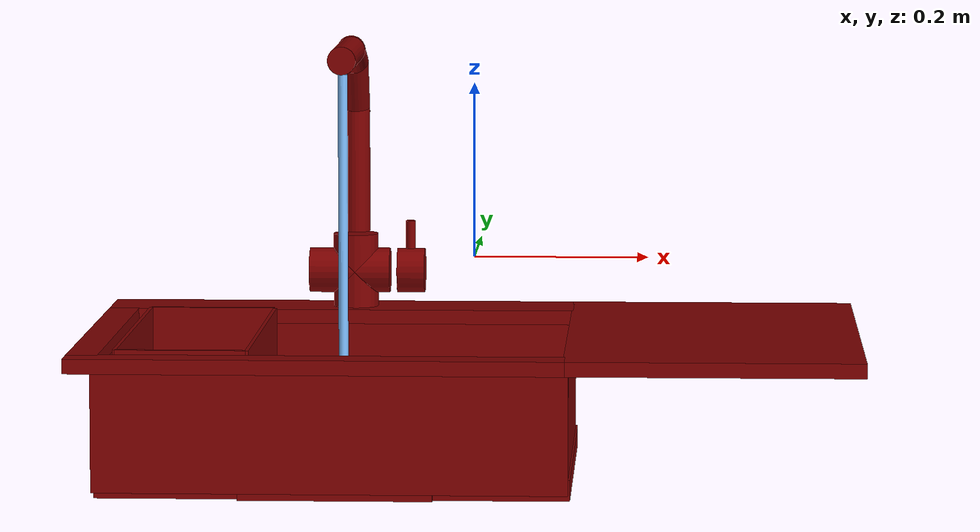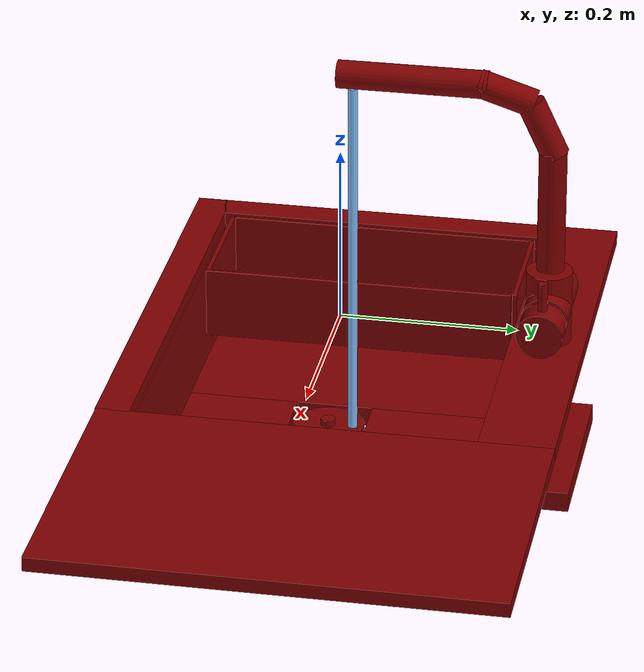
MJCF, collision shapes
<mujoco model="model">
  <compiler angle="radian"/>
  <asset>
    <mesh file="visuals/handle.obj" name="handle_vis"/>
    <mesh file="visuals/Body001.obj" name="Body001_vis"/>
    <mesh file="visuals/Funnel001.obj" name="Funnel001_vis"/>
    <mesh file="visuals/Shelf001.obj" name="Shelf001_vis"/>
    <mesh file="visuals/spout.obj" name="spout_vis"/>
    <texture file="visuals/T_BC001.png" name="Body001_material" type="2d"/>
    <material name="Body001_material" rgba="1 1 1 1.0" texture="Body001_material" shininess="0.47778499126434326" specular="0.3103448502657381"/>
    <texture file="visuals/T_BC001.png" name="handle_material" type="2d"/>
    <material name="handle_material" rgba="1 1 1 1.0" texture="handle_material" shininess="0.47778499126434326" specular="0.3103448502657381"/>
    <texture file="visuals/T_BC001.png" name="Funnel001_material" type="2d"/>
    <material name="Funnel001_material" rgba="1 1 1 1.0" texture="Funnel001_material" shininess="0.47778499126434326" specular="0.3103448502657381"/>
    <texture file="visuals/T_BC001.png" name="Shelf001_material" type="2d"/>
    <material name="Shelf001_material" rgba="1 1 1 1.0" texture="Shelf001_material" shininess="0.47778499126434326" specular="0.3103448502657381"/>
    <texture file="visuals/T_BC001.png" name="spout_material" type="2d"/>
    <material name="spout_material" rgba="1 1 1 1.0" texture="spout_material" shininess="0.47778499126434326" specular="0.3103448502657381"/>
  </asset>
  <default>
    <default class="visual">
      <geom conaffinity="0" contype="0" group="1" type="mesh"/>
    </default>
    <default class="collision">
      <geom group="0" rgba="0.5 0 0 0.5"/>
    </default>
    <default class="spawn">
      <geom group="0" rgba="1 1 1 0.5" contype="0" conaffinity="0"/>
      <site group="0" rgba="1 1 1 0.5"/>
    </default>
    <default class="region">
      <geom group="1" conaffinity="0" contype="0" rgba="0 1 0 0"/>
    </default>
  </default>
  <worldbody>
    <body>
      <body name="object">
        <geom mesh="Body001_vis" type="mesh" solimp="0.998 0.998 0.001" solref="0.001 1" density="100" friction="0.95 0.3 0.1" class="visual" material="Body001_material"/>
        <geom class="collision" type="box" pos="0.274773 0.000729 -0.093863" size="0.16684840619564056 0.25842657685279846 0.00833937805145979" quat="1.0 0.0 0.0 0.0"/>
        <geom class="collision" type="box" pos="-0.167268 0.216152 -0.093863" size="0.2769375145435333 0.04300346598029137 0.00833937805145979" quat="1.0 0.0 0.0 0.0"/>
        <geom class="collision" type="box" pos="-0.167268 -0.238850 -0.093863" size="0.2769375145435333 0.01971847005188465 0.00833937805145979" quat="1.0 0.0 0.0 0.0"/>
        <geom class="collision" type="box" pos="-0.426483 -0.022794 -0.093863" size="0.017722902819514275 0.20309917628765106 0.00833937805145979" quat="1.0 0.0 0.0 0.0"/>
        <geom class="collision" type="box" pos="-0.413121 -0.019859 -0.170014" size="0.004361288622021675 0.20016399025917053 0.06940042227506638" quat="1.0 0.0 0.0 0.0"/>
        <geom class="collision" type="box" pos="-0.152095 -0.223273 -0.170210" size="0.26534855365753174 0.005706818774342537 0.06970351934432983" quat="1.0 0.0 0.0 0.0"/>
        <geom class="collision" type="box" pos="-0.152452 0.177824 -0.170151" size="0.26212137937545776 0.003551251720637083 0.06956923007965088" quat="1.0 0.0 0.0 0.0"/>
        <geom class="collision" type="box" pos="0.110581 -0.023598 -0.166315" size="0.0026569294277578592 0.19621603190898895 0.0651913657784462" quat="1.0 0.0 0.0 0.0"/>
        <geom class="collision" type="box" pos="-0.306446 -0.020887 -0.235417" size="0.10868659615516663 0.19857676327228546 0.011869825422763824" quat="1.0 0.0 0.0 0.0"/>
        <geom class="collision" type="cylinder" pos="-0.151535 0.215188 -0.042769" size="0.02677016146481037 0.04431264102458954" quat="1.0 0.0 0.0 0.0"/>
        <geom class="collision" type="cylinder" pos="-0.158480 0.215188 -0.042769" size="0.02677016146481037 0.047876179218292236" quat="0.7071068286895752 -0.0 0.7071067690849304 0.0"/>
        <geom class="collision" type="box" pos="0.006674 -0.020887 -0.235417" size="0.10868659615516663 0.19857676327228546 0.011869825422763824" quat="1.0 0.0 0.0 0.0"/>
        <geom class="collision" type="box" pos="-0.145826 0.129898 -0.235417" size="0.10868659615516663 0.12787039577960968 0.011869825422763824" quat="1.0 0.0 0.0 0.0"/>
        <geom class="collision" type="box" pos="-0.145826 -0.158167 -0.235417" size="0.10868658870458603 0.07008589804172516 0.011869813315570354" quat="1.0 0.0 0.0 0.0"/>
        <body name="handle">
          <joint axis="1.0 0.0 0.0" pos="-0.087253 0.216357 -0.042900" limited="true" name="handle_joint_hinge_0" type="hinge" range="-0.7853981633974483 0.7853981633974483" damping="1" frictionloss="1" armature=".01" stiffness="0.05"/>
          <joint axis="0.0 1.0 0.0" pos="-0.087253 0.216357 -0.042900" limited="true" name="handle_joint_hinge_1" type="hinge" range="0.0 0.17453292519943295" damping="1" frictionloss="1" armature=".01" stiffness="0.05"/>
          <geom mesh="handle_vis" type="mesh" solimp="0.998 0.998 0.001" solref="0.001 1" density="100" friction="0.95 0.3 0.1" class="visual" material="handle_material"/>
          <geom class="collision" type="cylinder" pos="-0.085209 0.215188 -0.042769" size="0.02677016146481037 0.0162860956043005" quat="0.7071068286895752 -0.0 0.7071067690849304 0.0"/>
          <geom class="collision" type="cylinder" pos="-0.086000 0.216311 -0.000421" size="0.005658527370542288 0.017425786703824997" quat="1.0 0.0 0.0 0.0"/>
        </body>
        <body name="Funnel001">
          <joint axis="0.0 0.0 1.0" pos="-0.150606 -0.042405 -0.227280" limited="true" name="Funnel001_joint" range="0.0 0.1" type="slide" damping="1" frictionloss="1" armature=".01" stiffness="0.05"/>
          <geom mesh="Funnel001_vis" type="mesh" solimp="0.998 0.998 0.001" solref="0.001 1" density="100" friction="0.95 0.3 0.1" class="visual" material="Funnel001_material"/>
          <geom class="collision" type="cylinder" pos="-0.150340 -0.041998 -0.227068" size="0.04222723841667175 0.0036408603191375732" quat="1.0 0.0 0.0 0.0"/>
          <geom class="collision" type="cylinder" pos="-0.150634 -0.042520 -0.222690" size="0.008773480542004108 0.006686049047857523" quat="1.0 0.0 0.0 0.0"/>
        </body>
        <body name="Shelf001">
          <joint axis="0.0 0.0 1.0" pos="-0.316339 -0.014169 -0.121630" limited="true" name="Shelf001_joint" range="0.0 0.1" type="slide" damping="1" frictionloss="1" armature=".01" stiffness="0.05"/>
          <geom mesh="Shelf001_vis" type="mesh" solimp="0.998 0.998 0.001" solref="0.001 1" density="100" friction="0.95 0.3 0.1" class="visual" material="Shelf001_material"/>
          <geom class="collision" type="box" pos="-0.244461 -0.024352 -0.124634" size="0.0020581125281751156 0.18308816850185394 0.042504649609327316" quat="1.0 0.0 0.0 0.0"/>
          <geom class="collision" type="box" pos="-0.392372 -0.024352 -0.124634" size="0.0020581125281751156 0.1830882728099823 0.04250467196106911" quat="1.0 0.0 0.0 0.0"/>
          <geom class="collision" type="box" pos="-0.319105 -0.204855 -0.124634" size="0.073283351957798 0.0025870001409202814 0.042504698038101196" quat="1.0 0.0 0.0 0.0"/>
          <geom class="collision" type="box" pos="-0.319105 0.162424 -0.124634" size="0.073283351957798 0.002587001770734787 0.04250472038984299" quat="1.0 0.0 0.0 0.0"/>
          <geom class="collision" type="box" pos="-0.319105 -0.022019 -0.160547" size="0.073283351957798 0.18242378532886505 0.006591915152966976" quat="1.0 0.0 0.0 0.0"/>
        </body>
        <body name="spout">
          <joint axis="0.0 0.0 1.0" pos="-0.150612 0.216351 0.121033" limited="true" name="spout_joint" range="-0.7853981633974483 0.7853981633974483" type="hinge" damping="1" frictionloss="1" armature=".01" stiffness="0.05"/>
          <site type="cylinder" rgba="0.5 0.75 1 1" size="0.005574176553636789 0.21922387182712555" pos="-0.150334 -0.013398 -0.008765" name="water"/>
          <geom mesh="spout_vis" type="mesh" solimp="0.998 0.998 0.001" solref="0.001 1" density="100" friction="0.95 0.3 0.1" class="visual" material="spout_material"/>
          <geom class="collision" type="cylinder" pos="-0.150755 0.216047 0.078760" size="0.016185106709599495 0.07413582503795624" quat="1.0 0.0 0.0 0.0"/>
          <geom class="collision" type="cylinder" pos="-0.150755 0.204019 0.178248" size="0.016185106709599495 0.03441175818443298" quat="0.9757527112960815 0.218875914812088 0.0 0.0"/>
          <geom class="collision" type="cylinder" pos="-0.150755 0.055161 0.227088" size="0.016185106709599495 0.08616319298744202" quat="0.7071067094802856 0.70710688829422 0.0 0.0"/>
          <geom class="collision" type="cylinder" pos="-0.150755 0.161837 0.218606" size="0.016185106709599495 0.03368963673710823" quat="0.8078345656394958 0.5894092917442322 0.0 0.0"/>
        </body>
        <geom class="region" name="reg_main" type="box" pos="0.0 0.0 -0.1610915" size="0.443507 0.257698 0.0780805"/>
        <geom class="region" name="reg_basin" type="box" pos="-0.062531 -0.023821499999999995 -0.1576705" size="0.170197 0.1982245 0.06840650000000001"/>
      </body>
    </body>
  </worldbody>
  <actuator>
    <motor name="handle_joint_hinge_0_actuator" joint="handle_joint_hinge_0" gear="10"/>
    <motor name="handle_joint_hinge_1_actuator" joint="handle_joint_hinge_1" gear="10"/>
    <motor name="Funnel001_joint_actuator" joint="Funnel001_joint" gear="10"/>
    <motor name="Shelf001_joint_actuator" joint="Shelf001_joint" gear="50"/>
    <motor name="spout_joint_actuator" joint="spout_joint" gear="10"/>
  </actuator>
</mujoco>
